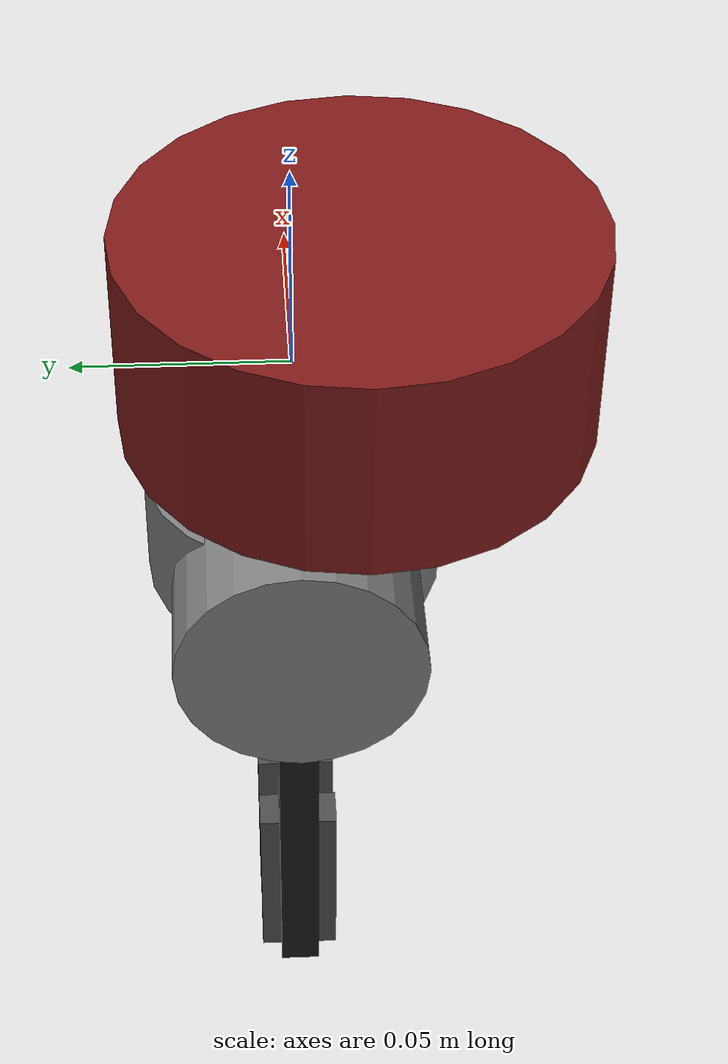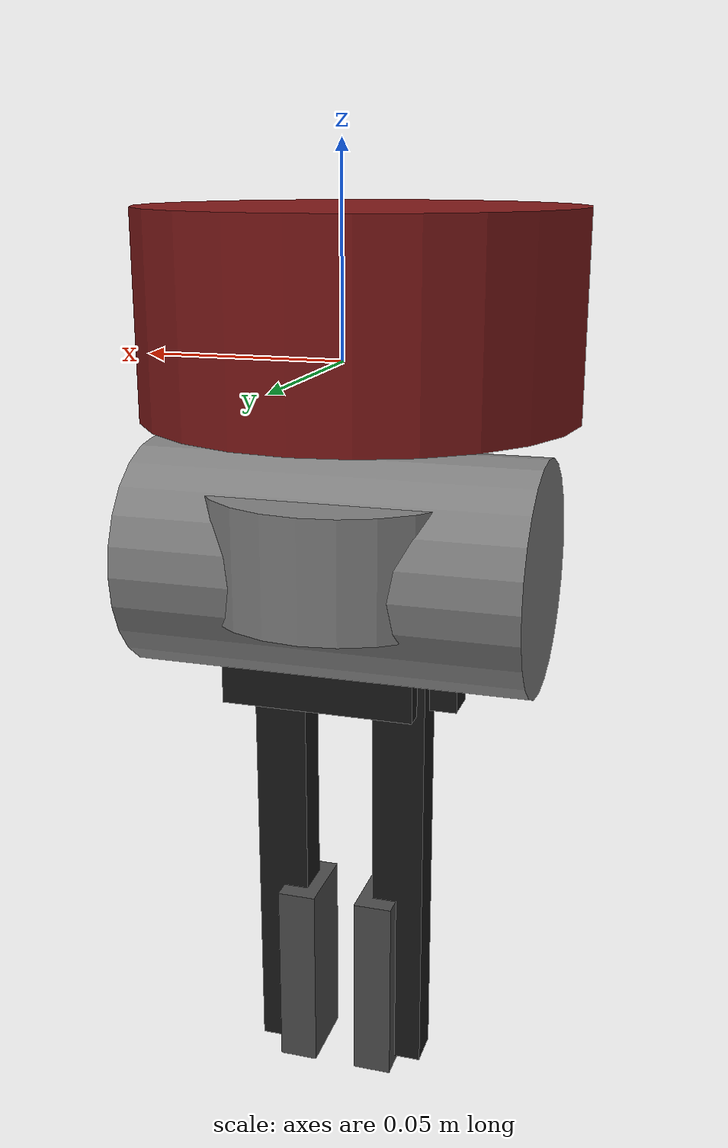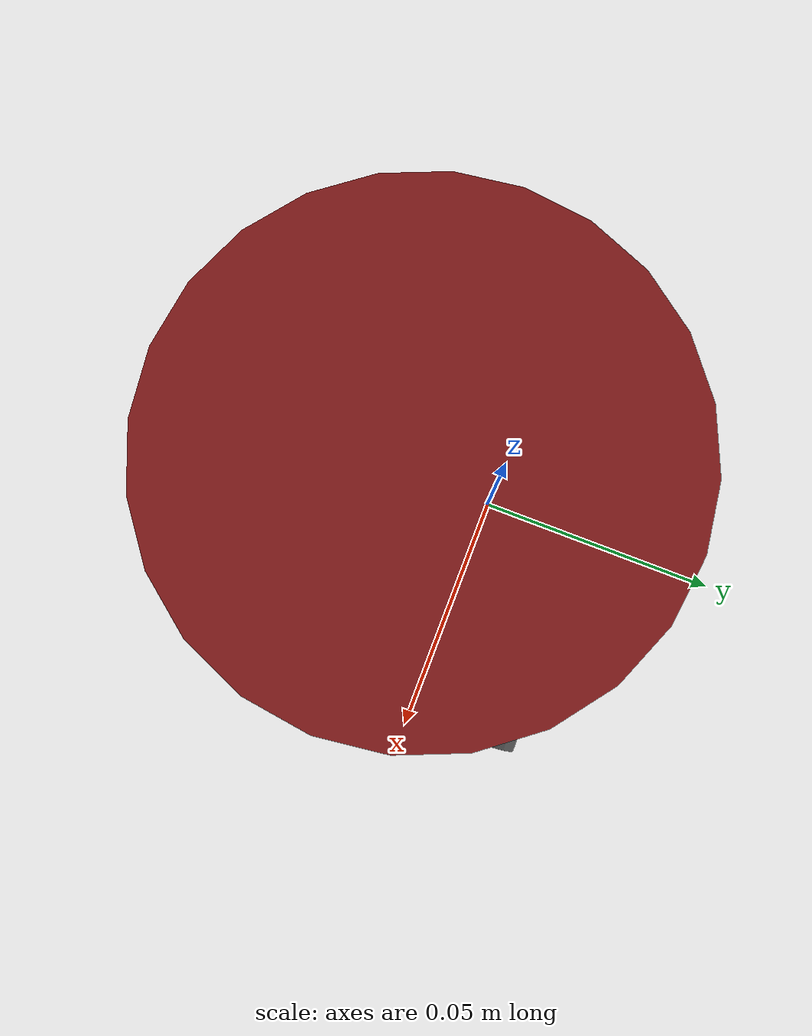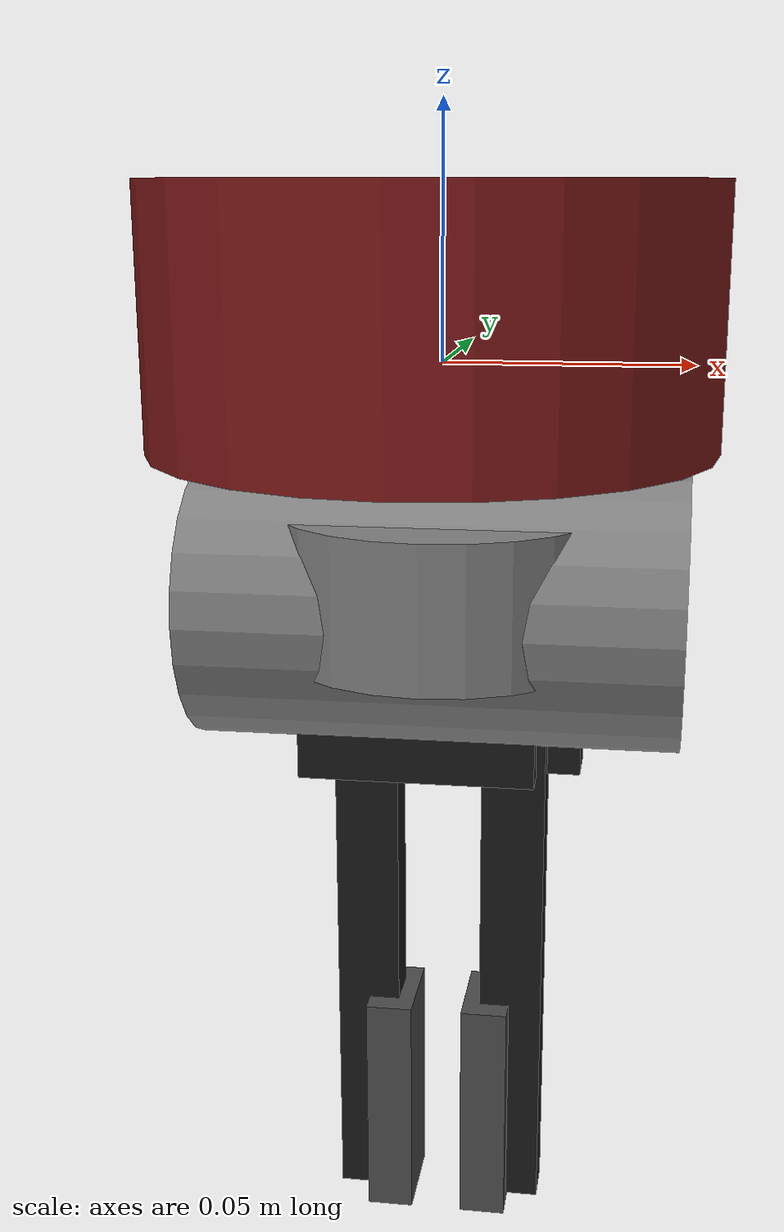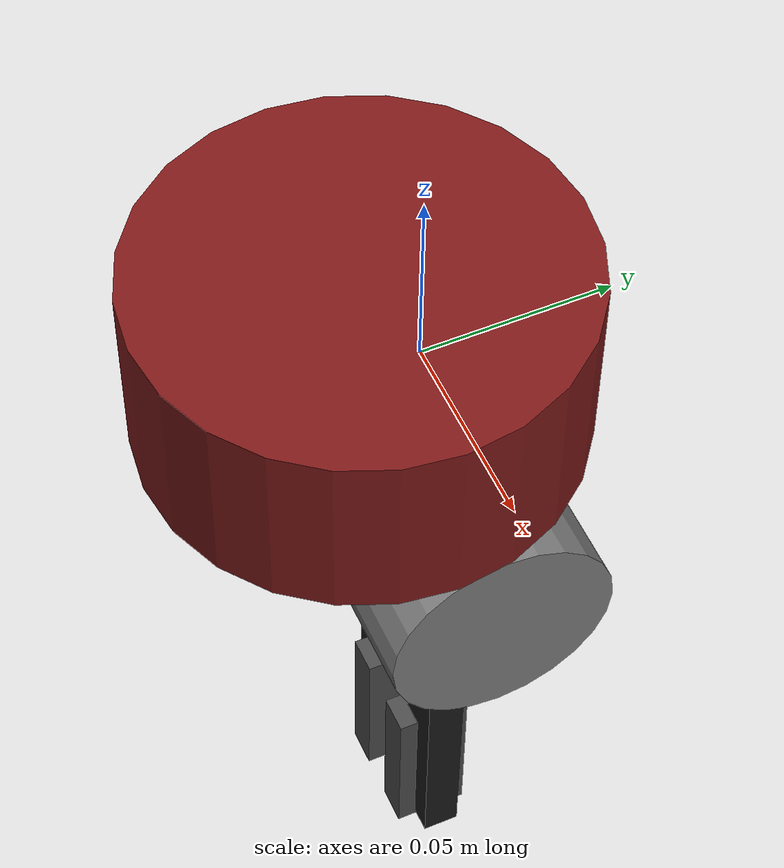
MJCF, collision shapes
<mujoco model='sawyer'>
    <compiler angle='radian' coordinate='local' meshdir='./dfm_env/meshes'/>
    <option collision='all' impratio='1' cone='elliptic' timestep='0.001' gravity='0 0 -9.8' viscosity='0'
            iterations='20'/>
    <size njmax='3000' nconmax='2000'/>

    <!--  ================= Visual Elements ================= /-->
    <asset>
        <mesh name='pedestal' file='sawyer_meshes/arm/pedestal.stl'/>
        <mesh name='base' file='sawyer_meshes/arm/base.stl'/>
        <mesh name='l0' file='sawyer_meshes/arm/l0.stl'/>
        <mesh name='head' file='sawyer_meshes/arm/head.stl'/>
        <mesh name='l1' file='sawyer_meshes/arm/l1.stl'/>
        <mesh name='l2' file='sawyer_meshes/arm/l2.stl'/>
        <mesh name='l3' file='sawyer_meshes/arm/l3.stl'/>
        <mesh name='l4' file='sawyer_meshes/arm/l4.stl'/>
        <mesh name='l5' file='sawyer_meshes/arm/l5.stl'/>
        <mesh name='l6' file='sawyer_meshes/arm/l6.stl'/>
        <mesh name='half_round_tip' file='sawyer_meshes/electric_gripper/fingers/half_round_tip.stl'/>
        <mesh name='electric_gripper_base' file='sawyer_meshes/electric_gripper/electric_gripper_base.stl'/>
        <mesh name='extended_narrow' file='sawyer_meshes/electric_gripper/fingers/extended_narrow.stl'/>
        <mesh name='paddle_tip' file='sawyer_meshes/electric_gripper/fingers/paddle_tip.stl'/>
    </asset>

    <!--  ================= Physical Properties ================= /-->
    <default>
        <geom solref='0.01 1' solimp='0.95 0.95 0.01' condim='4'/>

        <default class='arm'>
            <geom condim='1' friction='0 0 0' density='2700' contype='1' conaffinity='1'/>
            <joint limited='true' damping='1'/>
        </default>

        <default class='viz'>
            <geom contype='0' conaffinity='0' group='1' type='mesh'/>
        </default>

        <default class='gripper'>
            <geom condim='4' density='2700'/>
            <joint limited='true' damping='0.001' stiffness='0.1' springref='0'/>
        </default>

        <default class='gripper_pads'>
            <geom friction='1 0.005 0.0001' solref='0.01 1' solimp='0.95 0.98 0.001' condim='4' density='100'/>
        </default>

        <default class='takktile_unit'>
            <geom friction='5 0.003 0.0001' solref='0.008 1' solimp='0.95 0.99 0.0001' condim='6' density='300'
                  size='0.003 0.002 0.003' type='box' rgba='0.9 0.9 0.1 1'/>
            <site size='0.0035 0.001 0.0035' type='box' rgba='0.9 0.9 0.3 0.2'/>
        </default>
    </default>

    <!--  ================= Kinematic Tree ================= /-->
    <worldbody>
        <light directional='true' cutoff='40' exponent='10' diffuse='.4 .4 .4' specular='.7 .7 .7' pos='0.9 0 1.5'
               dir='0 0 -1' castshadow="false"/>
        <!--Tilted view-->
        <!--Top down view, camera v1-->
        <!--Top down view, camera v2-->
        <camera name='static_camera' pos='0.0 0.35 1.7' euler='0. 0 0'/>

        <!--================= Mocap =================-->
        <body name='arm_l6' pos='-0 0 0' quat='0 1 0 0'>
            <inertial pos='-8.0726e-06 0.0085838 -0.0049566' quat='0.479044 0.515636 -0.513069 0.491322' mass='0.3292'
                      diaginertia='0.000360258 0.000311068 0.000214974'/>
            <joint axis="1 0 0" damping="0.001" name="arm_slide0" pos="0 0 0" type="slide"/>
            <joint axis="0 -1 0" damping="0.001" name="arm_slide1" pos="0 0 0" type="slide"/>
            <joint axis="0 0 -1" damping="0.001" name="arm_slide2" pos="0 0 0" type="slide"/>
            <geom type='mesh' contype='0' conaffinity='0' group='1' rgba='0.5 0.1 0.1 1' mesh='l6'/>
            <geom size='0.055 0.025' pos='0 0.015 -0.01' type='cylinder' rgba='0.5 0.1 0.1 1'/>
            <body name='arm_hand' pos='0 0 0.0245' quat='0.707107 0 0 0.707107'>
                <inertial pos='1e-08 1e-08 1e-08' quat='0.820473 0.339851 -0.17592 0.424708' mass='1e-08'
                          diaginertia='1e-08 1e-08 1e-08'/>
                <geom size='0.035 0.015' pos='0 0 0.02' type='cylinder'/>
                <!--  ================= Gripper ================= /-->
                <body name='arm_gripper_base' pos='0 0 0.025'>
                    <inertial pos='0 0 0' quat='-0.5 0.5 0.5 0.5' mass='0.3' diaginertia='3e-08 2e-08 2e-08'/>
                    <geom quat='0 0 0.707107 0.707107' class='viz' mesh='electric_gripper_base'/>
                    <geom size='0.029 0.05' quat='0 0 0.707107 0.707107' type='cylinder'/>
                    <body name='finger_l' pos='0 -0.0015 0.02'>
                        <inertial pos='0 0 0' quat='0 0 0 -1' mass='0.02' diaginertia='0.01 0.01 0.01'/>
                        <geom class='viz' mesh='extended_narrow' euler='1.57 1.57 0' rgba='0.1 0.1 0.1 1'/>
                        <geom size='0.005 0.00675 0.05635' pos='0 0.01725 0.0615' quat='0 0 0 -1' type='box'
                              rgba='0.1 0.1 0.1 1'/>
                        <geom size='0.005 0.025 0.0085' pos='-0.005 -0.003 0.0083' quat='0 0 0 -1' type='box'
                              rgba='0.1 0.1 0.1 1'/>
                        <geom size='0.01 0.005 0.025' pos='0 0.012 0.095' type='box' rgba='0.3 0.3 0.3 0.9'
                              class='gripper_pads'/>
                        <!--  === Sensors === /-->
                    </body>
                    <body name='finger_r' pos='0 0.0015 0.02'>
                        <inertial pos='0 0 0' mass='0.02' diaginertia='0.01 0.01 0.01'/>
                        <geom class='viz' mesh='extended_narrow' euler='1.57 -1.57 0' rgba='0.1 0.1 0.1 1'/>
                        <geom size='0.005 0.00675 0.05635' pos='0 -0.01725 0.0615' type='box' rgba='0.1 0.1 0.1 1'/>
                        <geom size='0.005 0.025 0.0085' pos='0.005 0.003 0.0083' type='box' rgba='0.1 0.1 0.1 1'/>
                        <geom size='0.01 0.005 0.025' pos='0 -0.012 0.095' type='box' rgba='0.3 0.3 0.3 0.9'
                              class='gripper_pads'/>
                        <!--  === Sensors === /-->
                    </body>
                </body>
            </body>
        </body>
    </worldbody>

    <!--  ================= Constraints ================= /-->

    <!--  ================= Actuators ================= /-->
    <actuator>
        <!--  ================= Torque actuators ================= /-->
        <motor ctrllimited='false' joint='arm_slide0' name='tj0'/>
        <motor ctrllimited='false' joint='arm_slide1' name='tj1'/>
        <motor ctrllimited='false' joint='arm_slide2' name='tj2'/>

        <!--  ================= Position actuators ================= /-->
    </actuator>

</mujoco>
